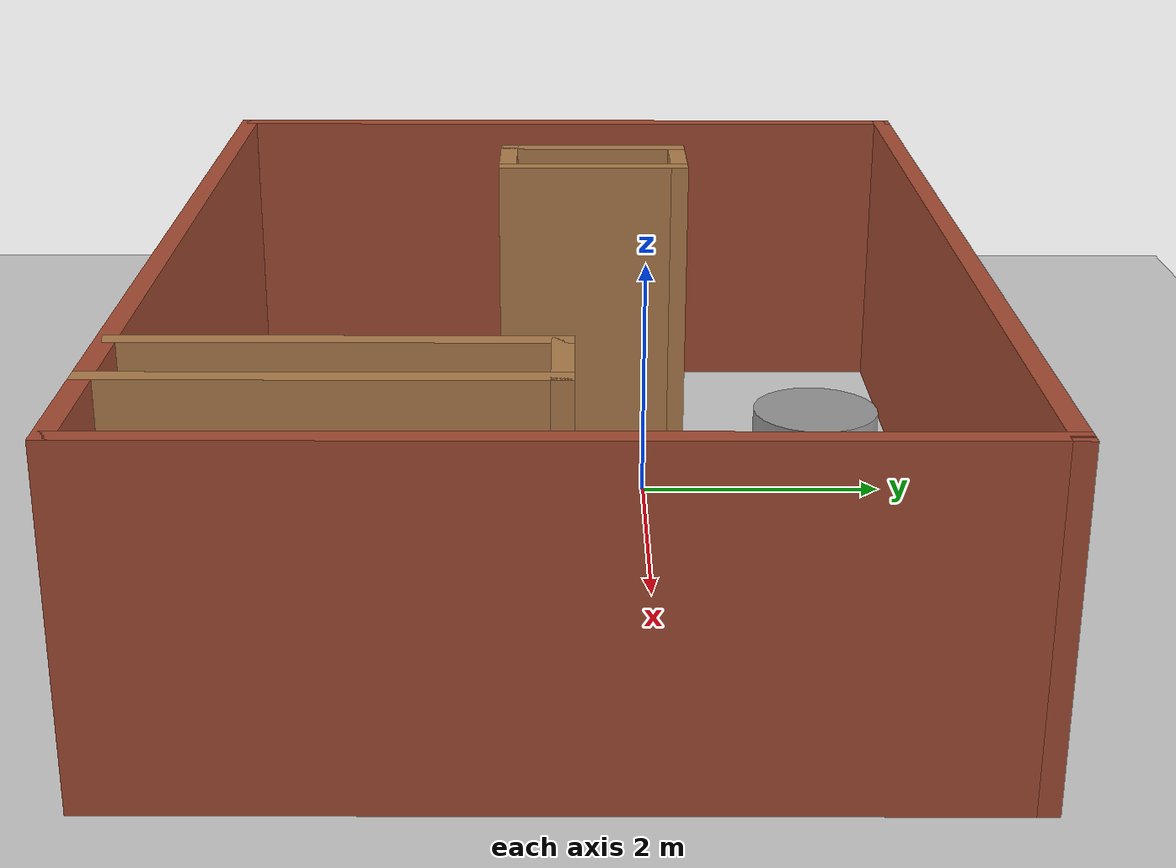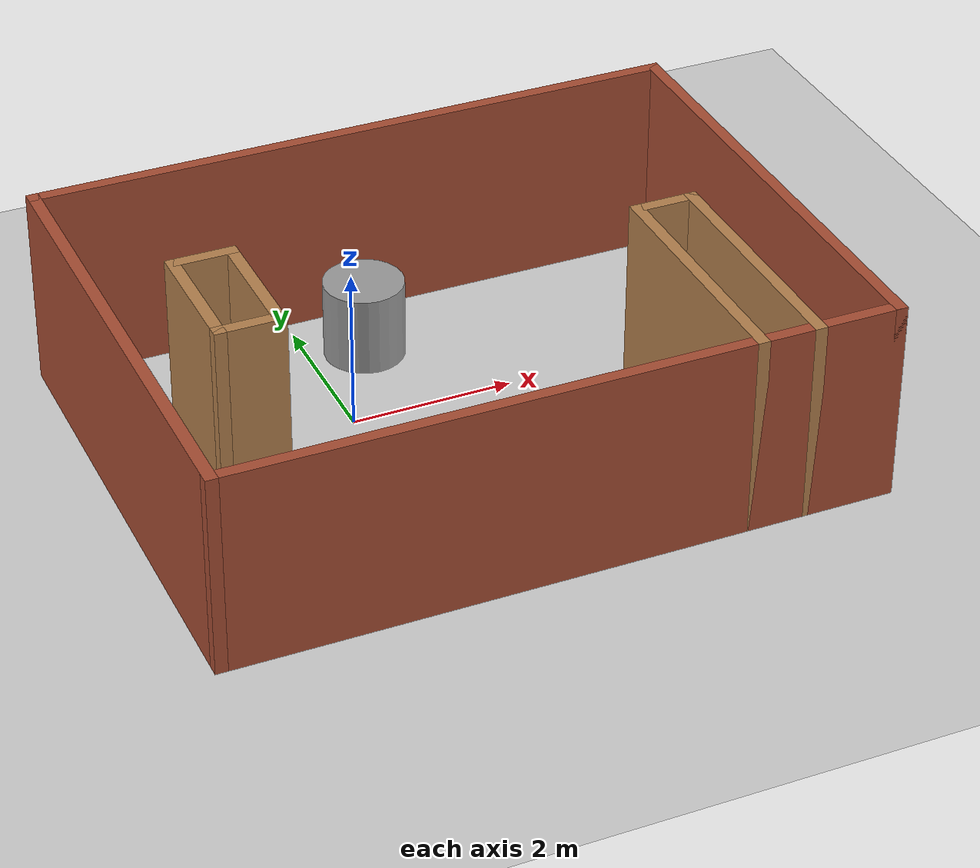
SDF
<sdf version="1.7">
 <world name="default">
  <light name="sun" type="directional">
   <pose>0 0 10 0 -0 0</pose>
   <diffuse>0.8 0.8 0.8 1</diffuse>
   <specular>0.2 0.2 0.2 1</specular>
   <attenuation>
    <range>1000</range>
    <constant>0.9</constant>
    <linear>0.01</linear>
    <quadratic>0.001</quadratic>
   </attenuation>
   <direction>-0.5 0.1 -0.9</direction>
   <spot><inner_angle>0</inner_angle><outer_angle>0</outer_angle><falloff>0</falloff></spot>
  </light>
  <model name="ground_plane">
   <static>1</static>
   <link name="link">
    <collision name="collision">
     <geometry><plane><normal>0 0 1</normal><size>100 100</size></plane></geometry>
     <surface>
      <contact><collide_bitmask>65535</collide_bitmask></contact>
      <friction><ode><mu>100</mu><mu2>50</mu2></ode></friction>
     </surface>
    </collision>
    <visual name="visual">
     <cast_shadows>0</cast_shadows>
     <geometry><plane><normal>0 0 1</normal><size>100 100</size></plane></geometry>
     <material>
      <script><uri>file://media/materials/scripts/gazebo.material</uri><name>Gazebo/Grey</name></script>
     </material>
    </visual>
   </link>
  </model>
  <gravity>0 0 -9.8</gravity>
  <magnetic_field>6e-06 2.3e-05 -4.2e-05</magnetic_field>
  <atmosphere type="adiabatic"/>
  <physics type="ode">
   <max_step_size>0.001</max_step_size>
   <real_time_factor>1</real_time_factor>
   <real_time_update_rate>1000</real_time_update_rate>
  </physics>
  <scene><ambient>0.4 0.4 0.4 1</ambient><background>0.7 0.7 0.7 1</background><shadows>1</shadows></scene>
  <spherical_coordinates>
   <surface_model>EARTH_WGS84</surface_model>
   <latitude_deg>0</latitude_deg>
   <longitude_deg>0</longitude_deg>
   <elevation>0</elevation>
   <heading_deg>0</heading_deg>
  </spherical_coordinates>
  <model name="exp4">
   <pose>0.99194 -0.66947 0 0 -0 0</pose>
   <link name="Wall_25">
    <collision name="Wall_25_Collision">
     <geometry><box><size>3.15 0.15 2.5</size></box></geometry>
     <pose>0 0 1.25 0 -0 0</pose>
    </collision>
    <visual name="Wall_25_Visual">
     <pose>0 0 1.25 0 -0 0</pose>
     <geometry><box><size>3.15 0.15 2.5</size></box></geometry>
     <material>
      <script><uri>file://media/materials/scripts/gazebo.material</uri><name>Gazebo/Wood</name></script>
      <ambient>1 1 1 1</ambient>
     </material>
     <meta><layer>0</layer></meta>
    </visual>
    <pose>3 -1.5 0 0 -0 1.5708</pose>
   </link>
   <link name="Wall_27">
    <collision name="Wall_27_Collision">
     <geometry><box><size>6.15 0.15 2.5</size></box></geometry>
     <pose>0 0 1.25 0 -0 0</pose>
    </collision>
    <visual name="Wall_27_Visual">
     <pose>0 0 1.25 0 -0 0</pose>
     <geometry><box><size>6.15 0.15 2.5</size></box></geometry>
     <material>
      <script><uri>file://media/materials/scripts/gazebo.material</uri><name>Gazebo/Bricks</name></script>
      <ambient>1 1 1 1</ambient>
     </material>
     <meta><layer>0</layer></meta>
    </visual>
    <pose>4 0 0 0 -0 1.5708</pose>
   </link>
   <link name="Wall_29">
    <collision name="Wall_29_Collision">
     <geometry><box><size>1.65 0.15 2.5</size></box></geometry>
     <pose>0 0 1.25 0 -0 0</pose>
    </collision>
    <visual name="Wall_29_Visual">
     <pose>0 0 1.25 0 -0 0</pose>
     <geometry><box><size>1.65 0.15 2.5</size></box></geometry>
     <material>
      <script><uri>file://media/materials/scripts/gazebo.material</uri><name>Gazebo/Wood</name></script>
      <ambient>1 1 1 1</ambient>
     </material>
     <meta><layer>0</layer></meta>
    </visual>
    <pose>-2.3 0.25 0 0 -0 1.5708</pose>
   </link>
   <link name="Wall_31">
    <collision name="Wall_31_Collision">
     <geometry><box><size>0.85 0.15 2.5</size></box></geometry>
     <pose>0 0 1.25 0 -0 0</pose>
    </collision>
    <visual name="Wall_31_Visual">
     <pose>0 0 1.25 0 -0 0</pose>
     <geometry><box><size>0.85 0.15 2.5</size></box></geometry>
     <material>
      <script><uri>file://media/materials/scripts/gazebo.material</uri><name>Gazebo/Wood</name></script>
      <ambient>1 1 1 1</ambient>
     </material>
     <meta><layer>0</layer></meta>
    </visual>
    <pose>-2.65 -0.5 0 0 -0 0</pose>
   </link>
   <link name="Wall_33">
    <collision name="Wall_33_Collision">
     <geometry><box><size>0.85 0.15 2.5</size></box></geometry>
     <pose>0 0 1.25 0 -0 0</pose>
    </collision>
    <visual name="Wall_33_Visual">
     <pose>0 0 1.25 0 -0 0</pose>
     <geometry><box><size>0.85 0.15 2.5</size></box></geometry>
     <material>
      <script><uri>file://media/materials/scripts/gazebo.material</uri><name>Gazebo/Wood</name></script>
      <ambient>1 1 1 1</ambient>
     </material>
     <meta><layer>0</layer></meta>
    </visual>
    <pose>2.65 0 0 0 -0 0</pose>
   </link>
   <link name="Wall_35">
    <collision name="Wall_35_Collision">
     <geometry><box><size>1.65 0.15 2.5</size></box></geometry>
     <pose>0 0 1.25 0 -0 0</pose>
    </collision>
    <visual name="Wall_35_Visual">
     <pose>0 0 1.25 0 -0 0</pose>
     <geometry><box><size>1.65 0.15 2.5</size></box></geometry>
     <material>
      <script><uri>file://media/materials/scripts/gazebo.material</uri><name>Gazebo/Wood</name></script>
      <ambient>1 1 1 1</ambient>
     </material>
     <meta><layer>0</layer></meta>
    </visual>
    <pose>-3 0.25 0 0 -0 1.5708</pose>
   </link>
   <link name="Wall_37">
    <collision name="Wall_37_Collision">
     <geometry><box><size>0.85 0.15 2.5</size></box></geometry>
     <pose>0 0 1.25 0 -0 0</pose>
    </collision>
    <visual name="Wall_37_Visual">
     <pose>0 0 1.25 0 -0 0</pose>
     <geometry><box><size>0.85 0.15 2.5</size></box></geometry>
     <material>
      <script><uri>file://media/materials/scripts/gazebo.material</uri><name>Gazebo/Wood</name></script>
      <ambient>1 1 1 1</ambient>
     </material>
     <meta><layer>0</layer></meta>
    </visual>
    <pose>-2.65 1 0 0 -0 0</pose>
   </link>
   <link name="Wall_39">
    <collision name="Wall_39_Collision">
     <geometry><box><size>8.15 0.15 2.5</size></box></geometry>
     <pose>0 0 1.25 0 -0 0</pose>
    </collision>
    <visual name="Wall_39_Visual">
     <pose>0 0 1.25 0 -0 0</pose>
     <geometry><box><size>8.15 0.15 2.5</size></box></geometry>
     <material>
      <script><uri>file://media/materials/scripts/gazebo.material</uri><name>Gazebo/Bricks</name></script>
      <ambient>1 1 1 1</ambient>
     </material>
     <meta><layer>0</layer></meta>
    </visual>
    <pose>0 3 0 0 -0 0</pose>
   </link>
   <link name="Wall_41">
    <collision name="Wall_41_Collision">
     <geometry><box><size>3.15 0.15 2.5</size></box></geometry>
     <pose>0 0 1.25 0 -0 0</pose>
    </collision>
    <visual name="Wall_41_Visual">
     <pose>0 0 1.25 0 -0 0</pose>
     <geometry><box><size>3.15 0.15 2.5</size></box></geometry>
     <material>
      <script><uri>file://media/materials/scripts/gazebo.material</uri><name>Gazebo/Wood</name></script>
      <ambient>1 1 1 1</ambient>
     </material>
     <meta><layer>0</layer></meta>
    </visual>
    <pose>2.3 -1.5 0 0 -0 1.5708</pose>
   </link>
   <link name="Wall_43">
    <collision name="Wall_43_Collision">
     <geometry><box><size>6.15 0.15 2.5</size></box></geometry>
     <pose>0 0 1.25 0 -0 0</pose>
    </collision>
    <visual name="Wall_43_Visual">
     <pose>0 0 1.25 0 -0 0</pose>
     <geometry><box><size>6.15 0.15 2.5</size></box></geometry>
     <material>
      <script><uri>file://media/materials/scripts/gazebo.material</uri><name>Gazebo/Bricks</name></script>
      <ambient>1 1 1 1</ambient>
     </material>
     <meta><layer>0</layer></meta>
    </visual>
    <pose>-4 0 0 0 -0 1.5708</pose>
   </link>
   <link name="Wall_45">
    <collision name="Wall_45_Collision">
     <geometry><box><size>8.15 0.15 2.5</size></box></geometry>
     <pose>0 0 1.25 0 -0 0</pose>
    </collision>
    <visual name="Wall_45_Visual">
     <pose>0 0 1.25 0 -0 0</pose>
     <geometry><box><size>8.15 0.15 2.5</size></box></geometry>
     <material>
      <script><uri>file://media/materials/scripts/gazebo.material</uri><name>Gazebo/Bricks</name></script>
      <ambient>1 1 1 1</ambient>
     </material>
     <meta><layer>0</layer></meta>
    </visual>
    <pose>0 -3 0 0 -0 0</pose>
   </link>
   <static>1</static>
  </model>
  <model name="unit_cylinder">
   <pose>0.683562 1.35171 0.499993 -3e-06 -4e-06 -0</pose>
   <link name="link">
    <inertial>
     <mass>1</mass>
     <inertia><ixx>0.145833</ixx><ixy>0</ixy><ixz>0</ixz><iyy>0.145833</iyy><iyz>0</iyz><izz>0.125</izz></inertia>
    </inertial>
    <collision name="collision">
     <geometry><cylinder><radius>0.5</radius><length>1</length></cylinder></geometry>
    </collision>
    <visual name="visual">
     <geometry><cylinder><radius>0.5</radius><length>1</length></cylinder></geometry>
     <material>
      <script><name>Gazebo/Grey</name><uri>file://media/materials/scripts/gazebo.material</uri></script>
     </material>
    </visual>
   </link>
  </model>
  <model name="unit_box">
   <pose>0.213031 -2.21489 0.5 0 -0 0</pose>
   <link name="link">
    <inertial>
     <mass>1</mass>
     <inertia>
      <ixx>0.166667</ixx>
      <ixy>0</ixy>
      <ixz>0</ixz>
      <iyy>0.166667</iyy>
      <iyz>0</iyz>
      <izz>0.166667</izz>
     </inertia>
    </inertial>
    <collision name="collision"><geometry><box><size>1 1 1</size></box></geometry></collision>
    <visual name="visual">
     <geometry><box><size>1 1 1</size></box></geometry>
     <material>
      <script><name>Gazebo/Grey</name><uri>file://media/materials/scripts/gazebo.material</uri></script>
     </material>
    </visual>
   </link>
  </model>
 </world>
</sdf>
